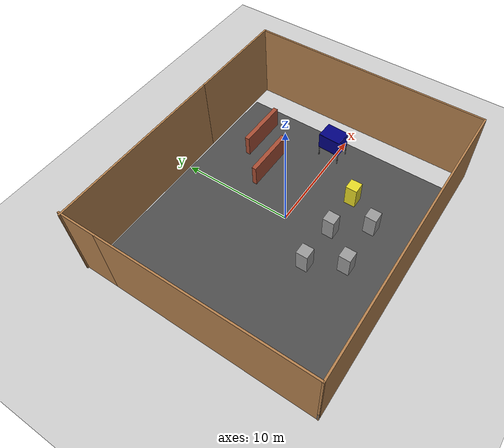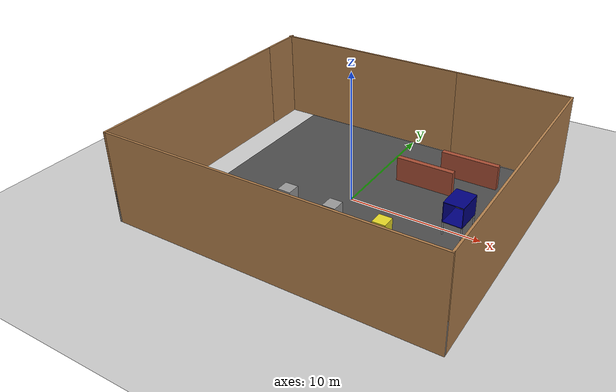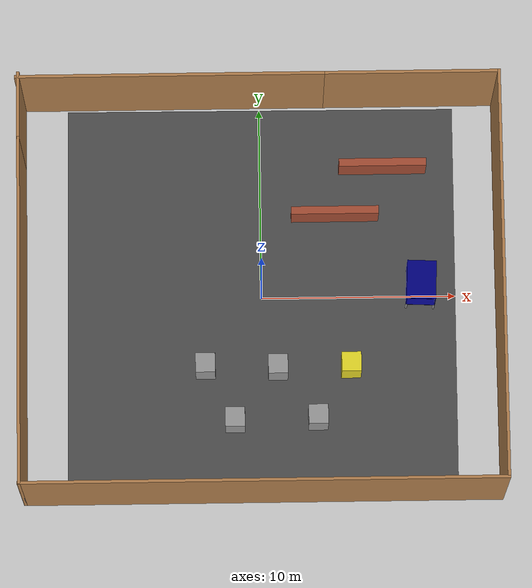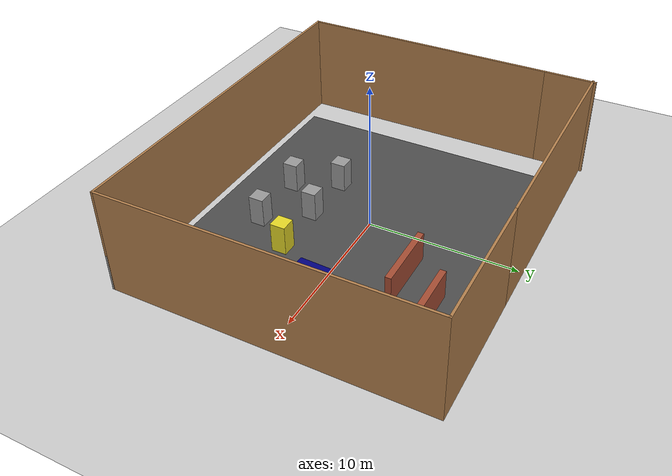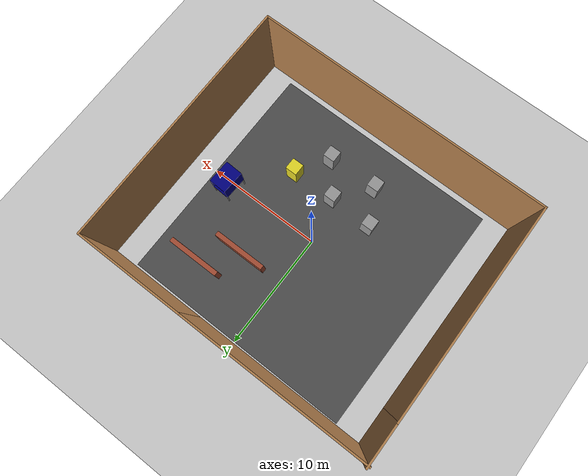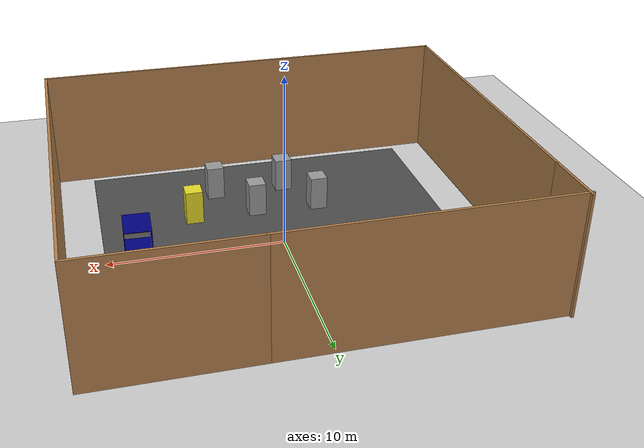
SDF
<sdf version="1.6">
 <world name="default">
  <light name="sun" type="directional">
   <pose>0 0 10 0 -0 0</pose>
   <diffuse>0.8 0.8 0.8 1</diffuse>
   <specular>0.2 0.2 0.2 1</specular>
   <attenuation>
    <range>1000</range>
    <constant>0.9</constant>
    <linear>0.01</linear>
    <quadratic>0.001</quadratic>
   </attenuation>
   <direction>-0.5 0.1 -0.9</direction>
  </light>
  <model name="ground_plane">
   <static>1</static>
   <link name="link">
    <collision name="collision">
     <geometry><plane><normal>0 0 1</normal><size>100 100</size></plane></geometry>
     <surface><friction><ode><mu>100</mu><mu2>50</mu2></ode></friction></surface>
    </collision>
    <visual name="visual">
     <cast_shadows>0</cast_shadows>
     <geometry><plane><normal>0 0 1</normal><size>100 100</size></plane></geometry>
     <material>
      <script><uri>file://media/materials/scripts/gazebo.material</uri><name>Gazebo/Grey</name></script>
     </material>
    </visual>
   </link>
  </model>
  <model name="asphalt_plane">
   <pose>0 0 0 0 0 -1.57504</pose>
   <static>1</static>
   <link name="link">
    <collision name="collision"><geometry><box><size>20 20 0.1</size></box></geometry></collision>
    <visual name="visual">
     <cast_shadows>0</cast_shadows>
     <geometry><box><size>20 20 0.1</size></box></geometry>
     <material>
      <script>
       <uri>model://asphalt_plane/materials/scripts</uri>
       <uri>model://asphalt_plane/materials/textures</uri>
       <name>vrc/asphalt</name>
      </script>
     </material>
    </visual>
   </link>
  </model>
  <physics name="default_physics" default="0" type="ode">
   <ode>
    <solver>
     <type>quick</type>
     <iters>10</iters>
     <sor>1.3</sor>
     <use_dynamic_moi_rescaling>0</use_dynamic_moi_rescaling>
    </solver>
    <constraints>
     <cfm>0</cfm>
     <erp>0.2</erp>
     <contact_max_correcting_vel>100</contact_max_correcting_vel>
     <contact_surface_layer>0.001</contact_surface_layer>
    </constraints>
   </ode>
   <max_step_size>0.004</max_step_size>
   <real_time_factor>1</real_time_factor>
   <real_time_update_rate>250</real_time_update_rate>
  </physics>
  <gravity>0 0 -9.8066</gravity>
  <magnetic_field>6e-06 2.3e-05 -4.2e-05</magnetic_field>
  <atmosphere type="adiabatic"/>
  <scene><ambient>0.4 0.4 0.4 1</ambient><background>0.7 0.7 0.7 1</background><shadows>1</shadows></scene>
  <spherical_coordinates>
   <surface_model>EARTH_WGS84</surface_model>
   <latitude_deg>0</latitude_deg>
   <longitude_deg>0</longitude_deg>
   <elevation>0</elevation>
   <heading_deg>0</heading_deg>
  </spherical_coordinates>
  <model name="A_walls">
   <pose>3.82989 4.22347 0 0 -0 0</pose>
   <link name="Wall_1">
    <collision name="Wall_1_Collision">
     <geometry><box><size>4.5 0.4 2</size></box></geometry>
     <pose>0 0 1 0 -0 0</pose>
    </collision>
    <visual name="Wall_1_Visual">
     <pose>0 0 1 0 -0 0</pose>
     <geometry><box><size>4.5 0.4 2</size></box></geometry>
     <material>
      <script><uri>file://media/materials/scripts/gazebo.material</uri><name>Gazebo/Bricks</name></script>
      <ambient>1 1 1 1</ambient>
     </material>
     <meta><layer>0</layer></meta>
    </visual>
   </link>
   <link name="Wall_2">
    <collision name="Wall_2_Collision">
     <geometry><box><size>4.5 0.4 2</size></box></geometry>
     <pose>0 0 1 0 -0 0</pose>
    </collision>
    <visual name="Wall_2_Visual">
     <pose>0 0 1 0 -0 0</pose>
     <geometry><box><size>4.5 0.4 2</size></box></geometry>
     <material>
      <script><uri>file://media/materials/scripts/gazebo.material</uri><name>Gazebo/Bricks</name></script>
      <ambient>1 1 1 1</ambient>
     </material>
     <meta><layer>0</layer></meta>
    </visual>
    <pose>2.5 2.5 0 0 -0 0</pose>
   </link>
   <static>1</static>
  </model>
  <model name="B_tube">
   <link name="link_0">
    <inertial>
     <mass>1</mass>
     <inertia><ixx>0.145833</ixx><ixy>0</ixy><ixz>0</ixz><iyy>0.145833</iyy><iyz>0</iyz><izz>0.125</izz></inertia>
    </inertial>
    <pose>-0.7 -0.95 -0.645 0 -0 0</pose>
    <visual name="visual">
     <geometry><cylinder><radius>0.05</radius><length>1</length></cylinder></geometry>
     <material>
      <lighting>1</lighting>
      <script><uri>file://media/materials/scripts/gazebo.material</uri><name>Gazebo/Grey</name></script>
      <shader type="vertex"><normal_map>__default__</normal_map></shader>
      <ambient>0.3 0.3 0.3 1</ambient>
      <diffuse>0.7 0.7 0.7 1</diffuse>
      <specular>0.01 0.01 0.01 1</specular>
      <emissive>0 0 0 1</emissive>
     </material>
    </visual>
    <collision name="collision">
     <geometry><cylinder><radius>0.05</radius><length>1</length></cylinder></geometry>
     <surface>
      <friction>
       <ode><mu>1</mu><mu2>1</mu2><fdir1>0 0 0</fdir1><slip1>0</slip1><slip2>0</slip2></ode>
       <torsional>
        <coefficient>1</coefficient>
        <patch_radius>0</patch_radius>
        <surface_radius>0</surface_radius>
        <use_patch_radius>1</use_patch_radius>
        <ode><slip>0</slip></ode>
       </torsional>
      </friction>
      <bounce><restitution_coefficient>0</restitution_coefficient><threshold>1e+06</threshold></bounce>
      <contact>
       <collide_without_contact>0</collide_without_contact>
       <collide_without_contact_bitmask>1</collide_without_contact_bitmask>
       <collide_bitmask>1</collide_bitmask>
       <ode>
        <soft_cfm>0</soft_cfm>
        <soft_erp>0.2</soft_erp>
        <kp>1e+13</kp>
        <kd>1</kd>
        <max_vel>0.01</max_vel>
        <min_depth>0</min_depth>
       </ode>
       <bullet>
        <split_impulse>1</split_impulse>
        <split_impulse_penetration_threshold>-0.01</split_impulse_penetration_threshold>
        <soft_cfm>0</soft_cfm>
        <soft_erp>0.2</soft_erp>
        <kp>1e+13</kp>
        <kd>1</kd>
       </bullet>
      </contact>
     </surface>
    </collision>
   </link>
   <link name="link_0_clone">
    <inertial>
     <mass>1</mass>
     <inertia><ixx>0.145833</ixx><ixy>0</ixy><ixz>0</ixz><iyy>0.145833</iyy><iyz>0</iyz><izz>0.125</izz></inertia>
    </inertial>
    <pose>0.7 -0.95 -0.645 0 -0 0</pose>
    <visual name="visual">
     <geometry><cylinder><radius>0.05</radius><length>1</length></cylinder></geometry>
     <material>
      <lighting>1</lighting>
      <script><uri>file://media/materials/scripts/gazebo.material</uri><name>Gazebo/Grey</name></script>
      <shader type="vertex"><normal_map>__default__</normal_map></shader>
      <ambient>0.3 0.3 0.3 1</ambient>
      <diffuse>0.7 0.7 0.7 1</diffuse>
      <specular>0.01 0.01 0.01 1</specular>
      <emissive>0 0 0 1</emissive>
     </material>
    </visual>
    <collision name="collision">
     <geometry><cylinder><radius>0.05</radius><length>1</length></cylinder></geometry>
     <surface>
      <friction>
       <ode><mu>1</mu><mu2>1</mu2><fdir1>0 0 0</fdir1><slip1>0</slip1><slip2>0</slip2></ode>
       <torsional>
        <coefficient>1</coefficient>
        <patch_radius>0</patch_radius>
        <surface_radius>0</surface_radius>
        <use_patch_radius>1</use_patch_radius>
        <ode><slip>0</slip></ode>
       </torsional>
      </friction>
      <bounce><restitution_coefficient>0</restitution_coefficient><threshold>1e+06</threshold></bounce>
      <contact>
       <collide_without_contact>0</collide_without_contact>
       <collide_without_contact_bitmask>1</collide_without_contact_bitmask>
       <collide_bitmask>1</collide_bitmask>
       <ode>
        <soft_cfm>0</soft_cfm>
        <soft_erp>0.2</soft_erp>
        <kp>1e+13</kp>
        <kd>1</kd>
        <max_vel>0.01</max_vel>
        <min_depth>0</min_depth>
       </ode>
       <bullet>
        <split_impulse>1</split_impulse>
        <split_impulse_penetration_threshold>-0.01</split_impulse_penetration_threshold>
        <soft_cfm>0</soft_cfm>
        <soft_erp>0.2</soft_erp>
        <kp>1e+13</kp>
        <kd>1</kd>
       </bullet>
      </contact>
     </surface>
    </collision>
   </link>
   <link name="link_0_clone_0">
    <inertial>
     <mass>1</mass>
     <inertia><ixx>0.145833</ixx><ixy>0</ixy><ixz>0</ixz><iyy>0.145833</iyy><iyz>0</iyz><izz>0.125</izz></inertia>
    </inertial>
    <pose>-0.7 0.95 -0.645 0 -0 0</pose>
    <visual name="visual">
     <geometry><cylinder><radius>0.05</radius><length>1</length></cylinder></geometry>
     <material>
      <lighting>1</lighting>
      <script><uri>file://media/materials/scripts/gazebo.material</uri><name>Gazebo/Grey</name></script>
      <shader type="vertex"><normal_map>__default__</normal_map></shader>
      <ambient>0.3 0.3 0.3 1</ambient>
      <diffuse>0.7 0.7 0.7 1</diffuse>
      <specular>0.01 0.01 0.01 1</specular>
      <emissive>0 0 0 1</emissive>
     </material>
    </visual>
    <collision name="collision">
     <geometry><cylinder><radius>0.05</radius><length>1</length></cylinder></geometry>
     <surface>
      <friction>
       <ode><mu>1</mu><mu2>1</mu2><fdir1>0 0 0</fdir1><slip1>0</slip1><slip2>0</slip2></ode>
       <torsional>
        <coefficient>1</coefficient>
        <patch_radius>0</patch_radius>
        <surface_radius>0</surface_radius>
        <use_patch_radius>1</use_patch_radius>
        <ode><slip>0</slip></ode>
       </torsional>
      </friction>
      <bounce><restitution_coefficient>0</restitution_coefficient><threshold>1e+06</threshold></bounce>
      <contact>
       <collide_without_contact>0</collide_without_contact>
       <collide_without_contact_bitmask>1</collide_without_contact_bitmask>
       <collide_bitmask>1</collide_bitmask>
       <ode>
        <soft_cfm>0</soft_cfm>
        <soft_erp>0.2</soft_erp>
        <kp>1e+13</kp>
        <kd>1</kd>
        <max_vel>0.01</max_vel>
        <min_depth>0</min_depth>
       </ode>
       <bullet>
        <split_impulse>1</split_impulse>
        <split_impulse_penetration_threshold>-0.01</split_impulse_penetration_threshold>
        <soft_cfm>0</soft_cfm>
        <soft_erp>0.2</soft_erp>
        <kp>1e+13</kp>
        <kd>1</kd>
       </bullet>
      </contact>
     </surface>
    </collision>
   </link>
   <link name="link_0_clone_1">
    <inertial>
     <mass>1</mass>
     <inertia><ixx>0.145833</ixx><ixy>0</ixy><ixz>0</ixz><iyy>0.145833</iyy><iyz>0</iyz><izz>0.125</izz></inertia>
    </inertial>
    <pose>0.7 0.95 -0.645 0 -0 0</pose>
    <visual name="visual">
     <geometry><cylinder><radius>0.05</radius><length>1</length></cylinder></geometry>
     <material>
      <lighting>1</lighting>
      <script><uri>file://media/materials/scripts/gazebo.material</uri><name>Gazebo/Grey</name></script>
      <shader type="vertex"><normal_map>__default__</normal_map></shader>
      <ambient>0.3 0.3 0.3 1</ambient>
      <diffuse>0.7 0.7 0.7 1</diffuse>
      <specular>0.01 0.01 0.01 1</specular>
      <emissive>0 0 0 1</emissive>
     </material>
    </visual>
    <collision name="collision">
     <geometry><cylinder><radius>0.05</radius><length>1</length></cylinder></geometry>
     <surface>
      <friction>
       <ode><mu>1</mu><mu2>1</mu2><fdir1>0 0 0</fdir1><slip1>0</slip1><slip2>0</slip2></ode>
       <torsional>
        <coefficient>1</coefficient>
        <patch_radius>0</patch_radius>
        <surface_radius>0</surface_radius>
        <use_patch_radius>1</use_patch_radius>
        <ode><slip>0</slip></ode>
       </torsional>
      </friction>
      <bounce><restitution_coefficient>0</restitution_coefficient><threshold>1e+06</threshold></bounce>
      <contact>
       <collide_without_contact>0</collide_without_contact>
       <collide_without_contact_bitmask>1</collide_without_contact_bitmask>
       <collide_bitmask>1</collide_bitmask>
       <ode>
        <soft_cfm>0</soft_cfm>
        <soft_erp>0.2</soft_erp>
        <kp>1e+13</kp>
        <kd>1</kd>
        <max_vel>0.01</max_vel>
        <min_depth>0</min_depth>
       </ode>
       <bullet>
        <split_impulse>1</split_impulse>
        <split_impulse_penetration_threshold>-0.01</split_impulse_penetration_threshold>
        <soft_cfm>0</soft_cfm>
        <soft_erp>0.2</soft_erp>
        <kp>1e+13</kp>
        <kd>1</kd>
       </bullet>
      </contact>
     </surface>
    </collision>
   </link>
   <link name="link_1">
    <inertial>
     <mass>1</mass>
     <inertia>
      <ixx>0.166667</ixx>
      <ixy>0</ixy>
      <ixz>0</ixz>
      <iyy>0.166667</iyy>
      <iyz>0</iyz>
      <izz>0.166667</izz>
     </inertia>
    </inertial>
    <pose>-0 -0 -0.125 0 -0 0</pose>
    <visual name="visual">
     <geometry><box><size>1.5 2 0.04</size></box></geometry>
     <material>
      <lighting>1</lighting>
      <script><uri>file://media/materials/scripts/gazebo.material</uri><name>Gazebo/Grey</name></script>
      <shader type="vertex"><normal_map>__default__</normal_map></shader>
      <ambient>0 0 0.5 1</ambient>
      <diffuse>0.7 0.7 0.7 1</diffuse>
      <specular>0.01 0.01 0.01 1</specular>
      <emissive>0 0 0 1</emissive>
     </material>
    </visual>
    <collision name="collision">
     <geometry><box><size>1.5 2 0.04</size></box></geometry>
     <surface>
      <friction>
       <ode><mu>1</mu><mu2>1</mu2><fdir1>0 0 0</fdir1><slip1>0</slip1><slip2>0</slip2></ode>
       <torsional>
        <coefficient>1</coefficient>
        <patch_radius>0</patch_radius>
        <surface_radius>0</surface_radius>
        <use_patch_radius>1</use_patch_radius>
        <ode><slip>0</slip></ode>
       </torsional>
      </friction>
      <bounce><restitution_coefficient>0</restitution_coefficient><threshold>1e+06</threshold></bounce>
      <contact>
       <collide_without_contact>0</collide_without_contact>
       <collide_without_contact_bitmask>1</collide_without_contact_bitmask>
       <collide_bitmask>1</collide_bitmask>
       <ode>
        <soft_cfm>0</soft_cfm>
        <soft_erp>0.2</soft_erp>
        <kp>1e+13</kp>
        <kd>1</kd>
        <max_vel>0.01</max_vel>
        <min_depth>0</min_depth>
       </ode>
       <bullet>
        <split_impulse>1</split_impulse>
        <split_impulse_penetration_threshold>-0.01</split_impulse_penetration_threshold>
        <soft_cfm>0</soft_cfm>
        <soft_erp>0.2</soft_erp>
        <kp>1e+13</kp>
        <kd>1</kd>
       </bullet>
      </contact>
     </surface>
    </collision>
   </link>
   <link name="link_1_clone">
    <inertial>
     <mass>1</mass>
     <inertia>
      <ixx>0.166667</ixx>
      <ixy>0</ixy>
      <ixz>0</ixz>
      <iyy>0.166667</iyy>
      <iyz>0</iyz>
      <izz>0.166667</izz>
     </inertia>
    </inertial>
    <pose>0 -0 1.415 0 -0 0</pose>
    <visual name="visual">
     <geometry><box><size>1.5 2 0.04</size></box></geometry>
     <material>
      <lighting>1</lighting>
      <script><uri>file://media/materials/scripts/gazebo.material</uri><name>Gazebo/Grey</name></script>
      <shader type="vertex"><normal_map>__default__</normal_map></shader>
      <ambient>0 0 0.5 1</ambient>
      <diffuse>0.7 0.7 0.7 1</diffuse>
      <specular>0.01 0.01 0.01 1</specular>
      <emissive>0 0 0 1</emissive>
     </material>
    </visual>
    <collision name="collision">
     <geometry><box><size>1.5 2 0.04</size></box></geometry>
     <surface>
      <friction>
       <ode><mu>1</mu><mu2>1</mu2><fdir1>0 0 0</fdir1><slip1>0</slip1><slip2>0</slip2></ode>
       <torsional>
        <coefficient>1</coefficient>
        <patch_radius>0</patch_radius>
        <surface_radius>0</surface_radius>
        <use_patch_radius>1</use_patch_radius>
        <ode><slip>0</slip></ode>
       </torsional>
      </friction>
      <bounce><restitution_coefficient>0</restitution_coefficient><threshold>1e+06</threshold></bounce>
      <contact>
       <collide_without_contact>0</collide_without_contact>
       <collide_without_contact_bitmask>1</collide_without_contact_bitmask>
       <collide_bitmask>1</collide_bitmask>
       <ode>
        <soft_cfm>0</soft_cfm>
        <soft_erp>0.2</soft_erp>
        <kp>1e+13</kp>
        <kd>1</kd>
        <max_vel>0.01</max_vel>
        <min_depth>0</min_depth>
       </ode>
       <bullet>
        <split_impulse>1</split_impulse>
        <split_impulse_penetration_threshold>-0.01</split_impulse_penetration_threshold>
        <soft_cfm>0</soft_cfm>
        <soft_erp>0.2</soft_erp>
        <kp>1e+13</kp>
        <kd>1</kd>
       </bullet>
      </contact>
     </surface>
    </collision>
   </link>
   <link name="link_1_clone_0">
    <inertial>
     <mass>1</mass>
     <inertia>
      <ixx>0.166667</ixx>
      <ixy>0</ixy>
      <ixz>0</ixz>
      <iyy>0.166667</iyy>
      <iyz>0</iyz>
      <izz>0.166667</izz>
     </inertia>
    </inertial>
    <pose>-0.73 0 0.645 0 1.57 0</pose>
    <visual name="visual">
     <geometry><box><size>1.5 2 0.04</size></box></geometry>
     <material>
      <lighting>1</lighting>
      <script><uri>file://media/materials/scripts/gazebo.material</uri><name>Gazebo/Grey</name></script>
      <shader type="vertex"><normal_map>__default__</normal_map></shader>
      <ambient>0 0 0.5 1</ambient>
      <diffuse>0.7 0.7 0.7 1</diffuse>
      <specular>0.01 0.01 0.01 1</specular>
      <emissive>0 0 0 1</emissive>
     </material>
    </visual>
    <collision name="collision">
     <geometry><box><size>1.5 2 0.04</size></box></geometry>
     <surface>
      <friction>
       <ode><mu>1</mu><mu2>1</mu2><fdir1>0 0 0</fdir1><slip1>0</slip1><slip2>0</slip2></ode>
       <torsional>
        <coefficient>1</coefficient>
        <patch_radius>0</patch_radius>
        <surface_radius>0</surface_radius>
        <use_patch_radius>1</use_patch_radius>
        <ode><slip>0</slip></ode>
       </torsional>
      </friction>
      <bounce><restitution_coefficient>0</restitution_coefficient><threshold>1e+06</threshold></bounce>
      <contact>
       <collide_without_contact>0</collide_without_contact>
       <collide_without_contact_bitmask>1</collide_without_contact_bitmask>
       <collide_bitmask>1</collide_bitmask>
       <ode>
        <soft_cfm>0</soft_cfm>
        <soft_erp>0.2</soft_erp>
        <kp>1e+13</kp>
        <kd>1</kd>
        <max_vel>0.01</max_vel>
        <min_depth>0</min_depth>
       </ode>
       <bullet>
        <split_impulse>1</split_impulse>
        <split_impulse_penetration_threshold>-0.01</split_impulse_penetration_threshold>
        <soft_cfm>0</soft_cfm>
        <soft_erp>0.2</soft_erp>
        <kp>1e+13</kp>
        <kd>1</kd>
       </bullet>
      </contact>
     </surface>
    </collision>
   </link>
   <link name="link_1_clone_0_clone">
    <inertial>
     <mass>1</mass>
     <inertia>
      <ixx>0.166667</ixx>
      <ixy>0</ixy>
      <ixz>0</ixz>
      <iyy>0.166667</iyy>
      <iyz>0</iyz>
      <izz>0.166667</izz>
     </inertia>
    </inertial>
    <pose>0.73 0 0.645 0 1.57 0</pose>
    <visual name="visual">
     <geometry><box><size>1.5 2 0.04</size></box></geometry>
     <material>
      <lighting>1</lighting>
      <script><uri>file://media/materials/scripts/gazebo.material</uri><name>Gazebo/Grey</name></script>
      <shader type="vertex"><normal_map>__default__</normal_map></shader>
      <ambient>0 0 0.5 1</ambient>
      <diffuse>0.7 0.7 0.7 1</diffuse>
      <specular>0.01 0.01 0.01 1</specular>
      <emissive>0 0 0 1</emissive>
     </material>
    </visual>
    <collision name="collision">
     <geometry><box><size>1.5 2 0.04</size></box></geometry>
     <surface>
      <friction>
       <ode><mu>1</mu><mu2>1</mu2><fdir1>0 0 0</fdir1><slip1>0</slip1><slip2>0</slip2></ode>
       <torsional>
        <coefficient>1</coefficient>
        <patch_radius>0</patch_radius>
        <surface_radius>0</surface_radius>
        <use_patch_radius>1</use_patch_radius>
        <ode><slip>0</slip></ode>
       </torsional>
      </friction>
      <bounce><restitution_coefficient>0</restitution_coefficient><threshold>1e+06</threshold></bounce>
      <contact>
       <collide_without_contact>0</collide_without_contact>
       <collide_without_contact_bitmask>1</collide_without_contact_bitmask>
       <collide_bitmask>1</collide_bitmask>
       <ode>
        <soft_cfm>0</soft_cfm>
        <soft_erp>0.2</soft_erp>
        <kp>1e+13</kp>
        <kd>1</kd>
        <max_vel>0.01</max_vel>
        <min_depth>0</min_depth>
       </ode>
       <bullet>
        <split_impulse>1</split_impulse>
        <split_impulse_penetration_threshold>-0.01</split_impulse_penetration_threshold>
        <soft_cfm>0</soft_cfm>
        <soft_erp>0.2</soft_erp>
        <kp>1e+13</kp>
        <kd>1</kd>
       </bullet>
      </contact>
     </surface>
    </collision>
   </link>
   <joint name="link_1_JOINT_0" type="fixed">
    <parent>link_1</parent>
    <child>link_1_clone_0_clone</child>
    <physics>
     <ode><limit><cfm>0</cfm><erp>0.2</erp></limit><suspension><cfm>0</cfm><erp>0.2</erp></suspension></ode>
    </physics>
   </joint>
   <joint name="link_1_JOINT_1" type="fixed">
    <parent>link_1</parent>
    <child>link_1_clone_0</child>
    <physics>
     <ode><limit><cfm>0</cfm><erp>0.2</erp></limit><suspension><cfm>0</cfm><erp>0.2</erp></suspension></ode>
    </physics>
   </joint>
   <joint name="link_1_JOINT_2" type="fixed">
    <parent>link_1</parent>
    <child>link_1_clone</child>
    <physics>
     <ode><limit><cfm>0</cfm><erp>0.2</erp></limit><suspension><cfm>0</cfm><erp>0.2</erp></suspension></ode>
    </physics>
   </joint>
   <joint name="link_1_JOINT_4" type="fixed">
    <parent>link_1</parent>
    <child>link_0_clone_0</child>
    <physics>
     <ode><limit><cfm>0</cfm><erp>0.2</erp></limit><suspension><cfm>0</cfm><erp>0.2</erp></suspension></ode>
    </physics>
   </joint>
   <joint name="link_1_JOINT_5" type="fixed">
    <parent>link_1</parent>
    <child>link_0_clone_1</child>
    <physics>
     <ode><limit><cfm>0</cfm><erp>0.2</erp></limit><suspension><cfm>0</cfm><erp>0.2</erp></suspension></ode>
    </physics>
   </joint>
   <joint name="link_1_JOINT_6" type="fixed">
    <parent>link_1</parent>
    <child>link_0_clone</child>
    <physics>
     <ode><limit><cfm>0</cfm><erp>0.2</erp></limit><suspension><cfm>0</cfm><erp>0.2</erp></suspension></ode>
    </physics>
   </joint>
   <joint name="link_1_JOINT_7" type="fixed">
    <parent>link_1</parent>
    <child>link_0</child>
    <physics>
     <ode><limit><cfm>0</cfm><erp>0.2</erp></limit><suspension><cfm>0</cfm><erp>0.2</erp></suspension></ode>
    </physics>
   </joint>
   <static>0</static>
   <pose>8.18629 0.368927 1.19492 3.9e-05 -0.000154 3.09734</pose>
  </model>
  <model name="wall_all">
   <pose>-0.0773 -0.08909 0 0 -0 0</pose>
   <link name="Wall_10">
    <collision name="Wall_10_Collision">
     <geometry><box><size>17.75 0.15 7</size></box></geometry>
     <pose>0 0 3.5 0 -0 0</pose>
    </collision>
    <visual name="Wall_10_Visual">
     <pose>0 0 3.5 0 -0 0</pose>
     <geometry><box><size>17.75 0.15 7</size></box></geometry>
     <material>
      <script><uri>file://media/materials/scripts/gazebo.material</uri><name>Gazebo/Wood</name></script>
      <ambient>1 1 1 1</ambient>
     </material>
     <meta><layer>0</layer></meta>
    </visual>
    <pose>-12.115 -1.675 0 0 -0 1.5708</pose>
   </link>
   <link name="Wall_11">
    <collision name="Wall_11_Collision">
     <geometry><box><size>3.5 0.15 7</size></box></geometry>
     <pose>0 0 3.5 0 -0 0</pose>
    </collision>
    <visual name="Wall_11_Visual">
     <pose>0 0 3.5 0 -0 0</pose>
     <geometry><box><size>3.5 0.15 7</size></box></geometry>
     <material>
      <script><uri>file://media/materials/scripts/gazebo.material</uri><name>Gazebo/Wood</name></script>
      <ambient>1 1 1 1</ambient>
     </material>
     <meta><layer>0</layer></meta>
    </visual>
    <pose>-12.115 8.8 0 0 -0 1.5708</pose>
   </link>
   <link name="Wall_2">
    <collision name="Wall_2_Collision">
     <geometry><box><size>15.703 0.15 7</size></box></geometry>
     <pose>0 0 3.5 0 -0 0</pose>
    </collision>
    <visual name="Wall_2_Visual">
     <pose>0 0 3.5 0 -0 0</pose>
     <geometry><box><size>15.703 0.15 7</size></box></geometry>
     <material>
      <script><uri>file://media/materials/scripts/gazebo.material</uri><name>Gazebo/Wood</name></script>
      <ambient>1 1 1 1</ambient>
     </material>
     <meta><layer>0</layer></meta>
    </visual>
    <pose>-4.4485 10.297 0 0 -0 3.14159</pose>
   </link>
   <link name="Wall_5">
    <collision name="Wall_5_Collision">
     <geometry><box><size>9.04652 0.15 7</size></box></geometry>
     <pose>0 0 3.5 0 -0 0</pose>
    </collision>
    <visual name="Wall_5_Visual">
     <pose>0 0 3.5 0 -0 0</pose>
     <geometry><box><size>9.04652 0.15 7</size></box></geometry>
     <material>
      <script><uri>file://media/materials/scripts/gazebo.material</uri><name>Gazebo/Wood</name></script>
      <ambient>1 1 1 1</ambient>
     </material>
     <meta><layer>0</layer></meta>
    </visual>
    <pose>7.7765 10.297 0 0 -0 0</pose>
   </link>
   <link name="Wall_6">
    <collision name="Wall_6_Collision">
     <geometry><box><size>20.9219 0.15 7</size></box></geometry>
     <pose>0 0 3.5 0 -0 0</pose>
    </collision>
    <visual name="Wall_6_Visual">
     <pose>0 0 3.5 0 -0 0</pose>
     <geometry><box><size>20.9219 0.15 7</size></box></geometry>
     <material>
      <script><uri>file://media/materials/scripts/gazebo.material</uri><name>Gazebo/Wood</name></script>
      <ambient>1 1 1 1</ambient>
     </material>
     <meta><layer>0</layer></meta>
    </visual>
    <pose>12.225 -0.089 0 0 -0 -1.5708</pose>
   </link>
   <link name="Wall_7">
    <collision name="Wall_7_Collision">
     <geometry><box><size>0.15 0.15 2.5</size></box></geometry>
     <pose>0 0 1.25 0 -0 0</pose>
    </collision>
    <visual name="Wall_7_Visual">
     <pose>0 0 1.25 0 -0 0</pose>
     <geometry><box><size>0.15 0.15 2.5</size></box></geometry>
     <material>
      <script><uri>file://media/materials/scripts/gazebo.material</uri><name>Gazebo/Grey</name></script>
      <ambient>1 1 1 1</ambient>
     </material>
     <meta><layer>0</layer></meta>
    </visual>
    <pose>12.225 -10.475 0 0 -0 0</pose>
   </link>
   <link name="Wall_8">
    <collision name="Wall_8_Collision">
     <geometry><box><size>24.5 0.15 7</size></box></geometry>
     <pose>0 0 3.5 0 -0 0</pose>
    </collision>
    <visual name="Wall_8_Visual">
     <pose>0 0 3.5 0 -0 0</pose>
     <geometry><box><size>24.5 0.15 7</size></box></geometry>
     <material>
      <script><uri>file://media/materials/scripts/gazebo.material</uri><name>Gazebo/Wood</name></script>
      <ambient>1 1 1 1</ambient>
     </material>
     <meta><layer>0</layer></meta>
    </visual>
    <pose>0.049999 -10.475 0 0 -0 3.14159</pose>
   </link>
   <link name="Wall_9">
    <collision name="Wall_9_Collision">
     <geometry><box><size>0.16 0.15 2.5</size></box></geometry>
     <pose>0 0 1.25 0 -0 0</pose>
    </collision>
    <visual name="Wall_9_Visual">
     <pose>0 0 1.25 0 -0 0</pose>
     <geometry><box><size>0.16 0.15 2.5</size></box></geometry>
     <material>
      <script><uri>file://media/materials/scripts/gazebo.material</uri><name>Gazebo/Grey</name></script>
      <ambient>1 1 1 1</ambient>
     </material>
     <meta><layer>0</layer></meta>
    </visual>
    <pose>-12.12 -10.475 0 0 -0 0</pose>
   </link>
   <static>1</static>
  </model>
  <model name="box_0">
   <link name="link_0">
    <inertial>
     <mass>1</mass>
     <inertia>
      <ixx>0.166667</ixx>
      <ixy>0</ixy>
      <ixz>0</ixz>
      <iyy>0.166667</iyy>
      <iyz>0</iyz>
      <izz>0.166667</izz>
     </inertia>
    </inertial>
    <visual name="visual">
     <geometry><box><size>1 1 2.01</size></box></geometry>
     <material>
      <lighting>1</lighting>
      <script><uri>file://media/materials/scripts/gazebo.material</uri><name>Gazebo/Grey</name></script>
      <shader type="pixel"><normal_map>__default__</normal_map></shader>
      <ambient>0.3 0.3 0.3 1</ambient>
      <diffuse>0.7 0.7 0.7 1</diffuse>
      <specular>0.01 0.01 0.01 1</specular>
      <emissive>0 0 0 1</emissive>
     </material>
    </visual>
    <collision name="collision">
     <geometry><box><size>1 1 2</size></box></geometry>
     <surface>
      <friction>
       <ode><mu>1</mu><mu2>1</mu2><fdir1>0 0 0</fdir1><slip1>0</slip1><slip2>0</slip2></ode>
       <torsional>
        <coefficient>1</coefficient>
        <patch_radius>0</patch_radius>
        <surface_radius>0</surface_radius>
        <use_patch_radius>1</use_patch_radius>
        <ode><slip>0</slip></ode>
       </torsional>
      </friction>
      <bounce><restitution_coefficient>0</restitution_coefficient><threshold>1e+06</threshold></bounce>
      <contact>
       <collide_without_contact>0</collide_without_contact>
       <collide_without_contact_bitmask>1</collide_without_contact_bitmask>
       <collide_bitmask>1</collide_bitmask>
       <ode>
        <soft_cfm>0</soft_cfm>
        <soft_erp>0.2</soft_erp>
        <kp>1e+13</kp>
        <kd>1</kd>
        <max_vel>0.01</max_vel>
        <min_depth>0</min_depth>
       </ode>
       <bullet>
        <split_impulse>1</split_impulse>
        <split_impulse_penetration_threshold>-0.01</split_impulse_penetration_threshold>
        <soft_cfm>0</soft_cfm>
        <soft_erp>0.2</soft_erp>
        <kp>1e+13</kp>
        <kd>1</kd>
       </bullet>
      </contact>
     </surface>
    </collision>
   </link>
   <static>0</static>
   <pose>2.81884 -6.41501 1.04999 -1.7e-05 2e-06 1.4e-05</pose>
  </model>
  <model name="box">
   <link name="link_0">
    <inertial>
     <mass>1</mass>
     <inertia>
      <ixx>0.166667</ixx>
      <ixy>0</ixy>
      <ixz>0</ixz>
      <iyy>0.166667</iyy>
      <iyz>0</iyz>
      <izz>0.166667</izz>
     </inertia>
    </inertial>
    <visual name="visual">
     <geometry><box><size>1 1 2.01</size></box></geometry>
     <material>
      <lighting>1</lighting>
      <script><uri>file://media/materials/scripts/gazebo.material</uri><name>Gazebo/Yellow</name></script>
      <shader type="pixel"><normal_map>__default__</normal_map></shader>
      <ambient>0.3 0.3 0.3 1</ambient>
      <diffuse>0.7 0.7 0.7 1</diffuse>
      <specular>0.01 0.01 0.01 1</specular>
      <emissive>0 0 0 1</emissive>
     </material>
    </visual>
    <collision name="collision">
     <geometry><box><size>1 1 2</size></box></geometry>
     <surface>
      <friction>
       <ode><mu>1</mu><mu2>1</mu2><fdir1>0 0 0</fdir1><slip1>0</slip1><slip2>0</slip2></ode>
       <torsional>
        <coefficient>1</coefficient>
        <patch_radius>0</patch_radius>
        <surface_radius>0</surface_radius>
        <use_patch_radius>1</use_patch_radius>
        <ode><slip>0</slip></ode>
       </torsional>
      </friction>
      <bounce><restitution_coefficient>0</restitution_coefficient><threshold>1e+06</threshold></bounce>
      <contact>
       <collide_without_contact>0</collide_without_contact>
       <collide_without_contact_bitmask>1</collide_without_contact_bitmask>
       <collide_bitmask>1</collide_bitmask>
       <ode>
        <soft_cfm>0</soft_cfm>
        <soft_erp>0.2</soft_erp>
        <kp>1e+13</kp>
        <kd>1</kd>
        <max_vel>0.01</max_vel>
        <min_depth>0</min_depth>
       </ode>
       <bullet>
        <split_impulse>1</split_impulse>
        <split_impulse_penetration_threshold>-0.01</split_impulse_penetration_threshold>
        <soft_cfm>0</soft_cfm>
        <soft_erp>0.2</soft_erp>
        <kp>1e+13</kp>
        <kd>1</kd>
       </bullet>
      </contact>
     </surface>
    </collision>
   </link>
   <static>0</static>
   <pose>4.55055 -3.72041 1.05 -1.8e-05 2e-06 -4.3e-05</pose>
  </model>
  <model name="box_0_clone">
   <link name="link_0">
    <inertial>
     <mass>1</mass>
     <inertia>
      <ixx>0.166667</ixx>
      <ixy>0</ixy>
      <ixz>0</ixz>
      <iyy>0.166667</iyy>
      <iyz>0</iyz>
      <izz>0.166667</izz>
     </inertia>
    </inertial>
    <visual name="visual">
     <geometry><box><size>1 1 2.01</size></box></geometry>
     <material>
      <lighting>1</lighting>
      <script><uri>file://media/materials/scripts/gazebo.material</uri><name>Gazebo/Grey</name></script>
      <shader type="pixel"><normal_map>__default__</normal_map></shader>
      <ambient>0.3 0.3 0.3 1</ambient>
      <diffuse>0.7 0.7 0.7 1</diffuse>
      <specular>0.01 0.01 0.01 1</specular>
      <emissive>0 0 0 1</emissive>
     </material>
    </visual>
    <collision name="collision">
     <geometry><box><size>1 1 2</size></box></geometry>
     <surface>
      <friction>
       <ode><mu>1</mu><mu2>1</mu2><fdir1>0 0 0</fdir1><slip1>0</slip1><slip2>0</slip2></ode>
       <torsional>
        <coefficient>1</coefficient>
        <patch_radius>0</patch_radius>
        <surface_radius>0</surface_radius>
        <use_patch_radius>1</use_patch_radius>
        <ode><slip>0</slip></ode>
       </torsional>
      </friction>
      <bounce><restitution_coefficient>0</restitution_coefficient><threshold>1e+06</threshold></bounce>
      <contact>
       <collide_without_contact>0</collide_without_contact>
       <collide_without_contact_bitmask>1</collide_without_contact_bitmask>
       <collide_bitmask>1</collide_bitmask>
       <ode>
        <soft_cfm>0</soft_cfm>
        <soft_erp>0.2</soft_erp>
        <kp>1e+13</kp>
        <kd>1</kd>
        <max_vel>0.01</max_vel>
        <min_depth>0</min_depth>
       </ode>
       <bullet>
        <split_impulse>1</split_impulse>
        <split_impulse_penetration_threshold>-0.01</split_impulse_penetration_threshold>
        <soft_cfm>0</soft_cfm>
        <soft_erp>0.2</soft_erp>
        <kp>1e+13</kp>
        <kd>1</kd>
       </bullet>
      </contact>
     </surface>
    </collision>
   </link>
   <static>0</static>
   <pose>-1.43631 -6.50227 1.04999 -1.7e-05 2e-06 1.4e-05</pose>
  </model>
  <model name="box_0_clone_0">
   <link name="link_0">
    <inertial>
     <mass>1</mass>
     <inertia>
      <ixx>0.166667</ixx>
      <ixy>0</ixy>
      <ixz>0</ixz>
      <iyy>0.166667</iyy>
      <iyz>0</iyz>
      <izz>0.166667</izz>
     </inertia>
    </inertial>
    <visual name="visual">
     <geometry><box><size>1 1 2.01</size></box></geometry>
     <material>
      <lighting>1</lighting>
      <script><uri>file://media/materials/scripts/gazebo.material</uri><name>Gazebo/Grey</name></script>
      <shader type="pixel"><normal_map>__default__</normal_map></shader>
      <ambient>0.3 0.3 0.3 1</ambient>
      <diffuse>0.7 0.7 0.7 1</diffuse>
      <specular>0.01 0.01 0.01 1</specular>
      <emissive>0 0 0 1</emissive>
     </material>
    </visual>
    <collision name="collision">
     <geometry><box><size>1 1 2</size></box></geometry>
     <surface>
      <friction>
       <ode><mu>1</mu><mu2>1</mu2><fdir1>0 0 0</fdir1><slip1>0</slip1><slip2>0</slip2></ode>
       <torsional>
        <coefficient>1</coefficient>
        <patch_radius>0</patch_radius>
        <surface_radius>0</surface_radius>
        <use_patch_radius>1</use_patch_radius>
        <ode><slip>0</slip></ode>
       </torsional>
      </friction>
      <bounce><restitution_coefficient>0</restitution_coefficient><threshold>1e+06</threshold></bounce>
      <contact>
       <collide_without_contact>0</collide_without_contact>
       <collide_without_contact_bitmask>1</collide_without_contact_bitmask>
       <collide_bitmask>1</collide_bitmask>
       <ode>
        <soft_cfm>0</soft_cfm>
        <soft_erp>0.2</soft_erp>
        <kp>1e+13</kp>
        <kd>1</kd>
        <max_vel>0.01</max_vel>
        <min_depth>0</min_depth>
       </ode>
       <bullet>
        <split_impulse>1</split_impulse>
        <split_impulse_penetration_threshold>-0.01</split_impulse_penetration_threshold>
        <soft_cfm>0</soft_cfm>
        <soft_erp>0.2</soft_erp>
        <kp>1e+13</kp>
        <kd>1</kd>
       </bullet>
      </contact>
     </surface>
    </collision>
   </link>
   <static>0</static>
   <pose>-2.92765 -3.67859 1.04999 -1.7e-05 2e-06 1.4e-05</pose>
  </model>
  <model name="box_0_clone_1">
   <link name="link_0">
    <inertial>
     <mass>1</mass>
     <inertia>
      <ixx>0.166667</ixx>
      <ixy>0</ixy>
      <ixz>0</ixz>
      <iyy>0.166667</iyy>
      <iyz>0</iyz>
      <izz>0.166667</izz>
     </inertia>
    </inertial>
    <visual name="visual">
     <geometry><box><size>1 1 2.01</size></box></geometry>
     <material>
      <lighting>1</lighting>
      <script><uri>file://media/materials/scripts/gazebo.material</uri><name>Gazebo/Grey</name></script>
      <shader type="pixel"><normal_map>__default__</normal_map></shader>
      <ambient>0.3 0.3 0.3 1</ambient>
      <diffuse>0.7 0.7 0.7 1</diffuse>
      <specular>0.01 0.01 0.01 1</specular>
      <emissive>0 0 0 1</emissive>
     </material>
    </visual>
    <collision name="collision">
     <geometry><box><size>1 1 2</size></box></geometry>
     <surface>
      <friction>
       <ode><mu>1</mu><mu2>1</mu2><fdir1>0 0 0</fdir1><slip1>0</slip1><slip2>0</slip2></ode>
       <torsional>
        <coefficient>1</coefficient>
        <patch_radius>0</patch_radius>
        <surface_radius>0</surface_radius>
        <use_patch_radius>1</use_patch_radius>
        <ode><slip>0</slip></ode>
       </torsional>
      </friction>
      <bounce><restitution_coefficient>0</restitution_coefficient><threshold>1e+06</threshold></bounce>
      <contact>
       <collide_without_contact>0</collide_without_contact>
       <collide_without_contact_bitmask>1</collide_without_contact_bitmask>
       <collide_bitmask>1</collide_bitmask>
       <ode>
        <soft_cfm>0</soft_cfm>
        <soft_erp>0.2</soft_erp>
        <kp>1e+13</kp>
        <kd>1</kd>
        <max_vel>0.01</max_vel>
        <min_depth>0</min_depth>
       </ode>
       <bullet>
        <split_impulse>1</split_impulse>
        <split_impulse_penetration_threshold>-0.01</split_impulse_penetration_threshold>
        <soft_cfm>0</soft_cfm>
        <soft_erp>0.2</soft_erp>
        <kp>1e+13</kp>
        <kd>1</kd>
       </bullet>
      </contact>
     </surface>
    </collision>
   </link>
   <static>0</static>
   <pose>0.794529 -3.77923 1.04999 -1.7e-05 2e-06 1.4e-05</pose>
  </model>
 </world>
</sdf>
